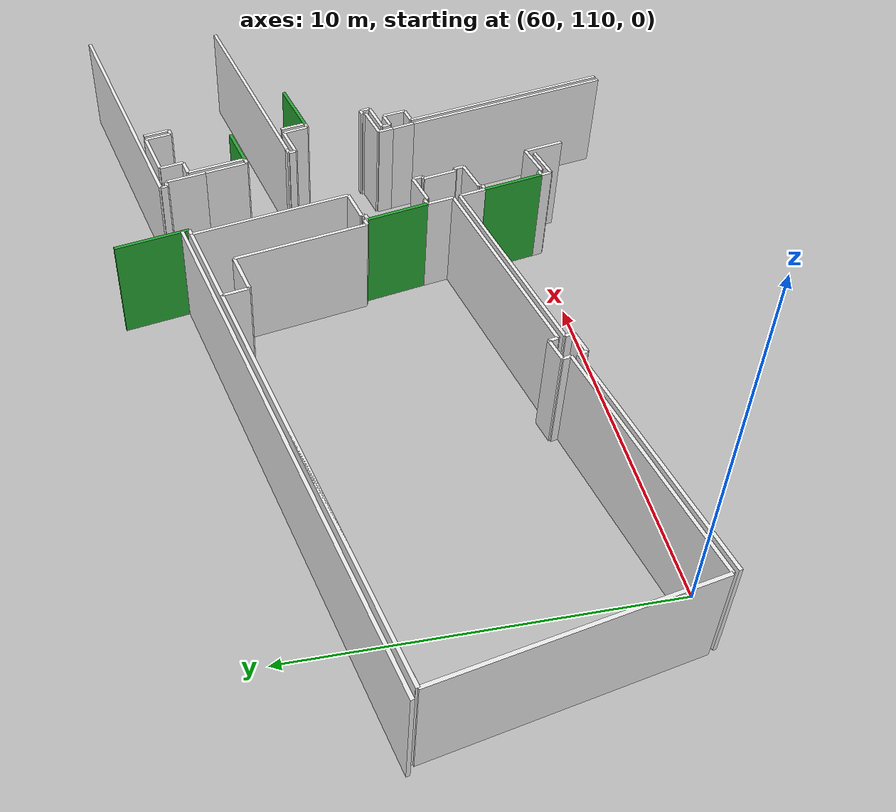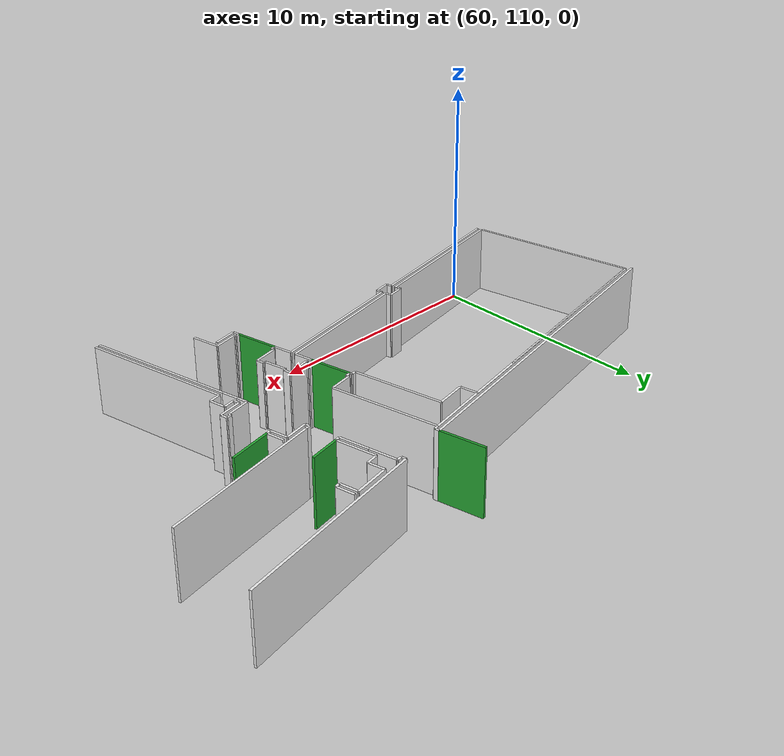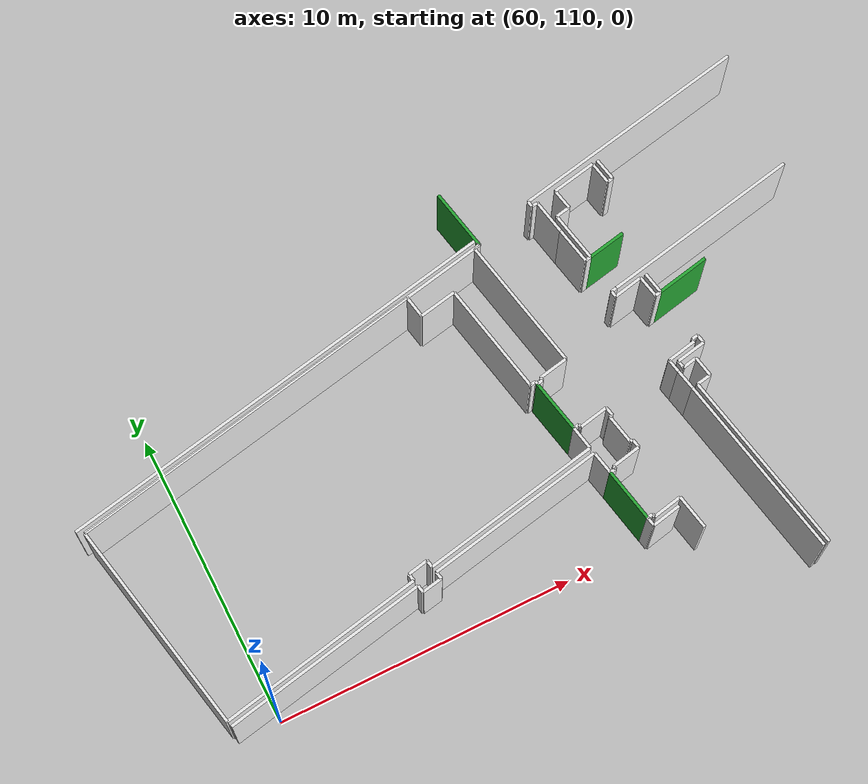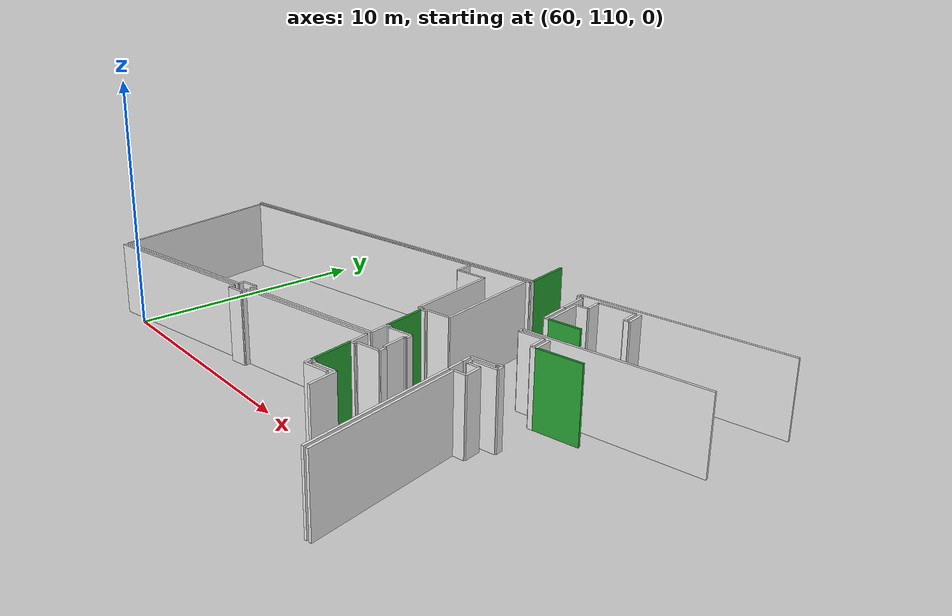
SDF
<sdf version="1.6">
 <world name="default">
  <model name="wall_71.7_114.6_1.5">
   <static>true</static>
   <pose>71.72999999998137 114.55000000004657 1.5 0 0 -1.3690339825092397</pose>
   <link name="link">
    <visual name="visual">
     <geometry><box><size>1.796440926065282 0.1 3</size></box></geometry>
     <material>
      <script><uri>file://media/materials/scripts/gazebo.material</uri><name>Gazebo/Green</name></script>
     </material>
    </visual>
    <collision name="collision"><geometry><box><size>1.796440926065282 0.1 3</size></box></geometry></collision>
   </link>
  </model>
  <model name="wall_72.4_111.0_1.5">
   <static>true</static>
   <pose>72.43499999999767 111.04000000003725 1.5 0 0 -1.3744936626731843</pose>
   <link name="link">
    <visual name="visual">
     <geometry><box><size>1.7944637079631676 0.1 3</size></box></geometry>
     <material>
      <script><uri>file://media/materials/scripts/gazebo.material</uri><name>Gazebo/Green</name></script>
     </material>
    </visual>
    <collision name="collision"><geometry><box><size>1.7944637079631676 0.1 3</size></box></geometry></collision>
   </link>
  </model>
  <model name="wall_77.2_116.6_1.5">
   <static>true</static>
   <pose>77.24499999999534 116.57000000006519 1.5 0 0 0.20065287724709358</pose>
   <link name="link">
    <visual name="visual">
     <geometry><box><size>1.80623918681111 0.1 3</size></box></geometry>
     <material>
      <script><uri>file://media/materials/scripts/gazebo.material</uri><name>Gazebo/Green</name></script>
     </material>
    </visual>
    <collision name="collision"><geometry><box><size>1.80623918681111 0.1 3</size></box></geometry></collision>
   </link>
  </model>
  <model name="wall_75.6_118.5_1.5">
   <static>true</static>
   <pose>75.57500000001164 118.51500000013039 1.5 0 0 0.1943652660922386</pose>
   <link name="link">
    <visual name="visual">
     <geometry><box><size>1.2943724348298333 0.1 3</size></box></geometry>
     <material>
      <script><uri>file://media/materials/scripts/gazebo.material</uri><name>Gazebo/Green</name></script>
     </material>
    </visual>
    <collision name="collision"><geometry><box><size>1.2943724348298333 0.1 3</size></box></geometry></collision>
   </link>
  </model>
  <model name="wall_71.8_121.3_1.5">
   <static>true</static>
   <pose>71.80499999993481 121.32999999984168 1.5 0 0 1.7672581801644416</pose>
   <link name="link">
    <visual name="visual">
     <geometry><box><size>2.1004047229885034 0.1 3</size></box></geometry>
     <material>
      <script><uri>file://media/materials/scripts/gazebo.material</uri><name>Gazebo/Green</name></script>
     </material>
    </visual>
    <collision name="collision"><geometry><box><size>2.1004047229885034 0.1 3</size></box></geometry></collision>
   </link>
  </model>
  <model name="wall_71.5_115.5_1.5">
   <static>true</static>
   <pose>71.5449999999837 115.47999999998137 1.5 0 0 1.6704649797471094</pose>
   <link name="link">
    <visual name="visual">
     <geometry><box><size>0.10049875584145537 0.1 3</size></box></geometry>
     <material>
      <script><uri>file://media/materials/scripts/gazebo.material</uri><name>Gazebo/White</name></script>
     </material>
    </visual>
    <collision name="collision"><geometry><box><size>0.10049875584145537 0.1 3</size></box></geometry></collision>
   </link>
  </model>
  <model name="wall_71.4_115.5_1.5">
   <static>true</static>
   <pose>71.44000000000233 115.51000000000931 1.5 0 0 -2.944197095754793</pose>
   <link name="link">
    <visual name="visual">
     <geometry><box><size>0.20396078041403173 0.1 3</size></box></geometry>
     <material>
      <script><uri>file://media/materials/scripts/gazebo.material</uri><name>Gazebo/White</name></script>
     </material>
    </visual>
    <collision name="collision"><geometry><box><size>0.20396078041403173 0.1 3</size></box></geometry></collision>
   </link>
  </model>
  <model name="wall_71.0_117.4_1.5">
   <static>true</static>
   <pose>70.96500000002561 117.37000000011176 1.5 0 0 1.7676803777493852</pose>
   <link name="link">
    <visual name="visual">
     <geometry><box><size>3.834070943308059 0.1 3</size></box></geometry>
     <material>
      <script><uri>file://media/materials/scripts/gazebo.material</uri><name>Gazebo/White</name></script>
     </material>
    </visual>
    <collision name="collision"><geometry><box><size>3.834070943308059 0.1 3</size></box></geometry></collision>
   </link>
  </model>
  <model name="wall_70.0_119.1_1.5">
   <static>true</static>
   <pose>69.96500000002561 119.12999999988824 1.5 0 0 -2.9519011013949563</pose>
   <link name="link">
    <visual name="visual">
     <geometry><box><size>1.2728314892817856 0.1 3</size></box></geometry>
     <material>
      <script><uri>file://media/materials/scripts/gazebo.material</uri><name>Gazebo/White</name></script>
     </material>
    </visual>
    <collision name="collision"><geometry><box><size>1.2728314892817856 0.1 3</size></box></geometry></collision>
   </link>
  </model>
  <model name="wall_69.3_119.4_1.5">
   <static>true</static>
   <pose>69.27000000001863 119.375 1.5 0 0 1.760276484581226</pose>
   <link name="link">
    <visual name="visual">
     <geometry><box><size>0.7433034378075905 0.1 3</size></box></geometry>
     <material>
      <script><uri>file://media/materials/scripts/gazebo.material</uri><name>Gazebo/White</name></script>
     </material>
    </visual>
    <collision name="collision"><geometry><box><size>0.7433034378075905 0.1 3</size></box></geometry></collision>
   </link>
  </model>
  <model name="wall_63.1_118.5_1.5">
   <static>true</static>
   <pose>63.14500000001863 118.54500000015832 1.5 0 0 -2.9467391918441352</pose>
   <link name="link">
    <visual name="visual">
     <geometry><box><size>12.343589429346915 0.1 3</size></box></geometry>
     <material>
      <script><uri>file://media/materials/scripts/gazebo.material</uri><name>Gazebo/White</name></script>
     </material>
    </visual>
    <collision name="collision"><geometry><box><size>12.343589429346915 0.1 3</size></box></geometry></collision>
   </link>
  </model>
  <model name="wall_57.8_113.8_1.5">
   <static>true</static>
   <pose>57.80000000001746 113.78500000014901 1.5 0 0 -1.3742100465085676</pose>
   <link name="link">
    <visual name="visual">
     <geometry><box><size>7.270027510151529 0.1 3</size></box></geometry>
     <material>
      <script><uri>file://media/materials/scripts/gazebo.material</uri><name>Gazebo/White</name></script>
     </material>
    </visual>
    <collision name="collision"><geometry><box><size>7.270027510151529 0.1 3</size></box></geometry></collision>
   </link>
  </model>
  <model name="wall_61.9_110.9_1.5">
   <static>true</static>
   <pose>61.945000000006985 110.9000000001397 1.5 0 0 0.1954353271142626</pose>
   <link name="link">
    <visual name="visual">
     <geometry><box><size>7.0033206409232305 0.1 3</size></box></geometry>
     <material>
      <script><uri>file://media/materials/scripts/gazebo.material</uri><name>Gazebo/White</name></script>
     </material>
    </visual>
    <collision name="collision"><geometry><box><size>7.0033206409232305 0.1 3</size></box></geometry></collision>
   </link>
  </model>
  <model name="wall_65.4_111.7_1.5">
   <static>true</static>
   <pose>65.35500000001048 111.69999999995343 1.5 0 0 1.7761917161396261</pose>
   <link name="link">
    <visual name="visual">
     <geometry><box><size>0.24515301320319682 0.1 3</size></box></geometry>
     <material>
      <script><uri>file://media/materials/scripts/gazebo.material</uri><name>Gazebo/White</name></script>
     </material>
    </visual>
    <collision name="collision"><geometry><box><size>0.24515301320319682 0.1 3</size></box></geometry></collision>
   </link>
  </model>
  <model name="wall_65.7_111.9_1.5">
   <static>true</static>
   <pose>65.6700000000128 111.88999999989755 1.5 0 0 0.20304521743943982</pose>
   <link name="link">
    <visual name="visual">
     <geometry><box><size>0.6942621983278424 0.1 3</size></box></geometry>
     <material>
      <script><uri>file://media/materials/scripts/gazebo.material</uri><name>Gazebo/White</name></script>
     </material>
    </visual>
    <collision name="collision"><geometry><box><size>0.6942621983278424 0.1 3</size></box></geometry></collision>
   </link>
  </model>
  <model name="wall_66.0_111.8_1.5">
   <static>true</static>
   <pose>66.03500000000349 111.83499999996275 1.5 0 0 -1.373400766989791</pose>
   <link name="link">
    <visual name="visual">
     <geometry><box><size>0.25495097567735614 0.1 3</size></box></geometry>
     <material>
      <script><uri>file://media/materials/scripts/gazebo.material</uri><name>Gazebo/White</name></script>
     </material>
    </visual>
    <collision name="collision"><geometry><box><size>0.25495097567735614 0.1 3</size></box></geometry></collision>
   </link>
  </model>
  <model name="wall_69.1_112.3_1.5">
   <static>true</static>
   <pose>69.05999999999767 112.30000000004657 1.5 0 0 0.19418838678074232</pose>
   <link name="link">
    <visual name="visual">
     <geometry><box><size>6.1149325425875 0.1 3</size></box></geometry>
     <material>
      <script><uri>file://media/materials/scripts/gazebo.material</uri><name>Gazebo/White</name></script>
     </material>
    </visual>
    <collision name="collision"><geometry><box><size>6.1149325425875 0.1 3</size></box></geometry></collision>
   </link>
  </model>
  <model name="wall_72.0_113.3_1.5">
   <static>true</static>
   <pose>71.98499999998603 113.28000000002794 1.5 0 0 1.760784614791112</pose>
   <link name="link">
    <visual name="visual">
     <geometry><box><size>0.7942921374956162 0.1 3</size></box></geometry>
     <material>
      <script><uri>file://media/materials/scripts/gazebo.material</uri><name>Gazebo/White</name></script>
     </material>
    </visual>
    <collision name="collision"><geometry><box><size>0.7942921374956162 0.1 3</size></box></geometry></collision>
   </link>
  </model>
  <model name="wall_72.2_112.3_1.5">
   <static>true</static>
   <pose>72.17999999999302 112.30499999993481 1.5 0 0 1.7756730438677673</pose>
   <link name="link">
    <visual name="visual">
     <geometry><box><size>0.786447709666139 0.1 3</size></box></geometry>
     <material>
      <script><uri>file://media/materials/scripts/gazebo.material</uri><name>Gazebo/White</name></script>
     </material>
    </visual>
    <collision name="collision"><geometry><box><size>0.786447709666139 0.1 3</size></box></geometry></collision>
   </link>
  </model>
  <model name="wall_69.1_112.1_1.5">
   <static>true</static>
   <pose>69.09999999997672 112.0999999998603 1.5 0 0 -2.947404266809051</pose>
   <link name="link">
    <visual name="visual">
     <geometry><box><size>6.1149325425875 0.1 3</size></box></geometry>
     <material>
      <script><uri>file://media/materials/scripts/gazebo.material</uri><name>Gazebo/White</name></script>
     </material>
    </visual>
    <collision name="collision"><geometry><box><size>6.1149325425875 0.1 3</size></box></geometry></collision>
   </link>
  </model>
  <model name="wall_66.1_111.4_1.5">
   <static>true</static>
   <pose>66.125 111.38999999989755 1.5 0 0 -1.3654009372177238</pose>
   <link name="link">
    <visual name="visual">
     <geometry><box><size>0.24515301321506852 0.1 3</size></box></geometry>
     <material>
      <script><uri>file://media/materials/scripts/gazebo.material</uri><name>Gazebo/White</name></script>
     </material>
    </visual>
    <collision name="collision"><geometry><box><size>0.24515301321506852 0.1 3</size></box></geometry></collision>
   </link>
  </model>
  <model name="wall_65.8_111.2_1.5">
   <static>true</static>
   <pose>65.80999999999767 111.2050000000745 1.5 0 0 -2.9526954728846198</pose>
   <link name="link">
    <visual name="visual">
     <geometry><box><size>0.6923149572561651 0.1 3</size></box></geometry>
     <material>
      <script><uri>file://media/materials/scripts/gazebo.material</uri><name>Gazebo/White</name></script>
     </material>
    </visual>
    <collision name="collision"><geometry><box><size>0.6923149572561651 0.1 3</size></box></geometry></collision>
   </link>
  </model>
  <model name="wall_65.4_111.3_1.5">
   <static>true</static>
   <pose>65.44499999997788 111.26000000000931 1.5 0 0 1.7761917161396261</pose>
   <link name="link">
    <visual name="visual">
     <geometry><box><size>0.24515301320319682 0.1 3</size></box></geometry>
     <material>
      <script><uri>file://media/materials/scripts/gazebo.material</uri><name>Gazebo/White</name></script>
     </material>
    </visual>
    <collision name="collision"><geometry><box><size>0.24515301320319682 0.1 3</size></box></geometry></collision>
   </link>
  </model>
  <model name="wall_62.0_110.7_1.5">
   <static>true</static>
   <pose>61.98499999998603 110.70499999984168 1.5 0 0 -2.9475584256050955</pose>
   <link name="link">
    <visual name="visual">
     <geometry><box><size>7.001385577168813 0.1 3</size></box></geometry>
     <material>
      <script><uri>file://media/materials/scripts/gazebo.material</uri><name>Gazebo/White</name></script>
     </material>
    </visual>
    <collision name="collision"><geometry><box><size>7.001385577168813 0.1 3</size></box></geometry></collision>
   </link>
  </model>
  <model name="wall_73.2_110.0_1.5">
   <static>true</static>
   <pose>73.16000000000349 109.95999999996275 1.5 0 0 -2.9402755450405995</pose>
   <link name="link">
    <visual name="visual">
     <geometry><box><size>1.0001999800800263 0.1 3</size></box></geometry>
     <material>
      <script><uri>file://media/materials/scripts/gazebo.material</uri><name>Gazebo/White</name></script>
     </material>
    </visual>
    <collision name="collision"><geometry><box><size>1.0001999800800263 0.1 3</size></box></geometry></collision>
   </link>
  </model>
  <model name="wall_72.6_110.0_1.5">
   <static>true</static>
   <pose>72.63999999998487 110.01000000000931 1.5 0 0 1.7681918864582145</pose>
   <link name="link">
    <visual name="visual">
     <geometry><box><size>0.30594117108908153 0.1 3</size></box></geometry>
     <material>
      <script><uri>file://media/materials/scripts/gazebo.material</uri><name>Gazebo/White</name></script>
     </material>
    </visual>
    <collision name="collision"><geometry><box><size>0.30594117108908153 0.1 3</size></box></geometry></collision>
   </link>
  </model>
  <model name="wall_76.8_114.5_1.5">
   <static>true</static>
   <pose>76.75 114.47500000009313 1.5 0 0 -1.3667783470430568</pose>
   <link name="link">
    <visual name="visual">
     <geometry><box><size>0.2961418579470187 0.1 3</size></box></geometry>
     <material>
      <script><uri>file://media/materials/scripts/gazebo.material</uri><name>Gazebo/White</name></script>
     </material>
    </visual>
    <collision name="collision"><geometry><box><size>0.2961418579470187 0.1 3</size></box></geometry></collision>
   </link>
  </model>
  <model name="wall_76.3_114.2_1.5">
   <static>true</static>
   <pose>76.28500000000349 114.23500000010245 1.5 0 0 -2.9519790378789845</pose>
   <link name="link">
    <visual name="visual">
     <geometry><box><size>1.0080674580977094 0.1 3</size></box></geometry>
     <material>
      <script><uri>file://media/materials/scripts/gazebo.material</uri><name>Gazebo/White</name></script>
     </material>
    </visual>
    <collision name="collision"><geometry><box><size>1.0080674580977094 0.1 3</size></box></geometry></collision>
   </link>
  </model>
  <model name="wall_75.8_114.0_1.5">
   <static>true</static>
   <pose>75.81500000000233 114.01500000013039 1.5 0 0 -1.3734007667659154</pose>
   <link name="link">
    <visual name="visual">
     <geometry><box><size>0.2549509756887716 0.1 3</size></box></geometry>
     <material>
      <script><uri>file://media/materials/scripts/gazebo.material</uri><name>Gazebo/White</name></script>
     </material>
    </visual>
    <collision name="collision"><geometry><box><size>0.2549509756887716 0.1 3</size></box></geometry></collision>
   </link>
  </model>
  <model name="wall_76.1_113.9_1.5">
   <static>true</static>
   <pose>76.08500000002095 113.94000000017695 1.5 0 0 0.2013171085608308</pose>
   <link name="link">
    <visual name="visual">
     <geometry><box><size>0.5000999900114971 0.1 3</size></box></geometry>
     <material>
      <script><uri>file://media/materials/scripts/gazebo.material</uri><name>Gazebo/White</name></script>
     </material>
    </visual>
    <collision name="collision"><geometry><box><size>0.5000999900114971 0.1 3</size></box></geometry></collision>
   </link>
  </model>
  <model name="wall_76.4_113.7_1.5">
   <static>true</static>
   <pose>76.39500000001863 113.6500000001397 1.5 0 0 -1.3818991459561358</pose>
   <link name="link">
    <visual name="visual">
     <geometry><box><size>0.6923149573923696 0.1 3</size></box></geometry>
     <material>
      <script><uri>file://media/materials/scripts/gazebo.material</uri><name>Gazebo/White</name></script>
     </material>
    </visual>
    <collision name="collision"><geometry><box><size>0.6923149573923696 0.1 3</size></box></geometry></collision>
   </link>
  </model>
  <model name="wall_76.2_113.3_1.5">
   <static>true</static>
   <pose>76.21499999999651 113.26500000013039 1.5 0 0 -2.9599438239016918</pose>
   <link name="link">
    <visual name="visual">
     <geometry><box><size>0.4981967483044168 0.1 3</size></box></geometry>
     <material>
      <script><uri>file://media/materials/scripts/gazebo.material</uri><name>Gazebo/White</name></script>
     </material>
    </visual>
    <collision name="collision"><geometry><box><size>0.4981967483044168 0.1 3</size></box></geometry></collision>
   </link>
  </model>
  <model name="wall_76.6_110.1_1.5">
   <static>true</static>
   <pose>76.58499999999185 110.13500000000931 1.5 0 0 -1.3740242082667369</pose>
   <link name="link">
    <visual name="visual">
     <geometry><box><size>6.291406838293342 0.1 3</size></box></geometry>
     <material>
      <script><uri>file://media/materials/scripts/gazebo.material</uri><name>Gazebo/White</name></script>
     </material>
    </visual>
    <collision name="collision"><geometry><box><size>6.291406838293342 0.1 3</size></box></geometry></collision>
   </link>
  </model>
  <model name="wall_76.3_116.8_1.5">
   <static>true</static>
   <pose>76.28999999997905 116.75500000012107 1.5 0 0 -1.3813161688905715</pose>
   <link name="link">
    <visual name="visual">
     <geometry><box><size>0.7433034373502634 0.1 3</size></box></geometry>
     <material>
      <script><uri>file://media/materials/scripts/gazebo.material</uri><name>Gazebo/White</name></script>
     </material>
    </visual>
    <collision name="collision"><geometry><box><size>0.7433034373502634 0.1 3</size></box></geometry></collision>
   </link>
  </model>
  <model name="wall_76.5_120.8_1.5">
   <static>true</static>
   <pose>76.51500000001397 120.75499999988824 1.5 0 0 -1.3734007669151658</pose>
   <link name="link">
    <visual name="visual">
     <geometry><box><size>0.764852927043484 0.1 3</size></box></geometry>
     <material>
      <script><uri>file://media/materials/scripts/gazebo.material</uri><name>Gazebo/White</name></script>
     </material>
    </visual>
    <collision name="collision"><geometry><box><size>0.764852927043484 0.1 3</size></box></geometry></collision>
   </link>
  </model>
  <model name="wall_76.7_120.4_1.5">
   <static>true</static>
   <pose>76.68500000002678 120.39999999990687 1.5 0 0 0.20749622662047904</pose>
   <link name="link">
    <visual name="visual">
     <geometry><box><size>0.19416487839942884 0.1 3</size></box></geometry>
     <material>
      <script><uri>file://media/materials/scripts/gazebo.material</uri><name>Gazebo/White</name></script>
     </material>
    </visual>
    <collision name="collision"><geometry><box><size>0.19416487839942884 0.1 3</size></box></geometry></collision>
   </link>
  </model>
  <model name="wall_76.7_120.8_1.5">
   <static>true</static>
   <pose>76.7050000000163 120.7949999999255 1.5 0 0 1.7681918866746276</pose>
   <link name="link">
    <visual name="visual">
     <geometry><box><size>0.764852927043484 0.1 3</size></box></geometry>
     <material>
      <script><uri>file://media/materials/scripts/gazebo.material</uri><name>Gazebo/White</name></script>
     </material>
    </visual>
    <collision name="collision"><geometry><box><size>0.764852927043484 0.1 3</size></box></geometry></collision>
   </link>
  </model>
  <model name="wall_78.5_117.8_1.5">
   <static>true</static>
   <pose>78.52999999999884 117.78000000002794 1.5 0 0 -2.9465012371516703</pose>
   <link name="link">
    <visual name="visual">
     <geometry><box><size>6.809170287154237 0.1 3</size></box></geometry>
     <material>
      <script><uri>file://media/materials/scripts/gazebo.material</uri><name>Gazebo/White</name></script>
     </material>
    </visual>
    <collision name="collision"><geometry><box><size>6.809170287154237 0.1 3</size></box></geometry></collision>
   </link>
  </model>
  <model name="wall_74.8_119.2_1.5">
   <static>true</static>
   <pose>74.77499999999418 119.22500000009313 1.5 0 0 1.7658877432748503</pose>
   <link name="link">
    <visual name="visual">
     <geometry><box><size>1.7022925717284638 0.1 3</size></box></geometry>
     <material>
      <script><uri>file://media/materials/scripts/gazebo.material</uri><name>Gazebo/White</name></script>
     </material>
    </visual>
    <collision name="collision"><geometry><box><size>1.7022925717284638 0.1 3</size></box></geometry></collision>
   </link>
  </model>
  <model name="wall_74.9_120.1_1.5">
   <static>true</static>
   <pose>74.85499999998137 120.11000000010245 1.5 0 0 0.2013171085608308</pose>
   <link name="link">
    <visual name="visual">
     <geometry><box><size>0.5000999900114971 0.1 3</size></box></geometry>
     <material>
      <script><uri>file://media/materials/scripts/gazebo.material</uri><name>Gazebo/White</name></script>
     </material>
    </visual>
    <collision name="collision"><geometry><box><size>0.5000999900114971 0.1 3</size></box></geometry></collision>
   </link>
  </model>
  <model name="wall_75.0_120.5_1.5">
   <static>true</static>
   <pose>75.02999999999884 120.5 1.5 0 0 1.7738415440725144</pose>
   <link name="link">
    <visual name="visual">
     <geometry><box><size>0.6942621980075696 0.1 3</size></box></geometry>
     <material>
      <script><uri>file://media/materials/scripts/gazebo.material</uri><name>Gazebo/White</name></script>
     </material>
    </visual>
    <collision name="collision"><geometry><box><size>0.6942621980075696 0.1 3</size></box></geometry></collision>
   </link>
  </model>
  <model name="wall_75.7_121.0_1.5">
   <static>true</static>
   <pose>75.70000000001164 120.98499999986961 1.5 0 0 0.19349440931601616</pose>
   <link name="link">
    <visual name="visual">
     <geometry><box><size>1.508144555394632 0.1 3</size></box></geometry>
     <material>
      <script><uri>file://media/materials/scripts/gazebo.material</uri><name>Gazebo/White</name></script>
     </material>
    </visual>
    <collision name="collision"><geometry><box><size>1.508144555394632 0.1 3</size></box></geometry></collision>
   </link>
  </model>
  <model name="wall_73.9_109.7_1.5">
   <static>true</static>
   <pose>73.91500000000815 109.70999999996275 1.5 0 0 1.7665335133806872</pose>
   <link name="link">
    <visual name="visual">
     <geometry><box><size>1.1825819212062707 0.1 3</size></box></geometry>
     <material>
      <script><uri>file://media/materials/scripts/gazebo.material</uri><name>Gazebo/White</name></script>
     </material>
    </visual>
    <collision name="collision"><geometry><box><size>1.1825819212062707 0.1 3</size></box></geometry></collision>
   </link>
  </model>
  <model name="wall_73.3_110.2_1.5">
   <static>true</static>
   <pose>73.30999999999767 110.18999999994412 1.5 0 0 -2.9402755450289626</pose>
   <link name="link">
    <visual name="visual">
     <geometry><box><size>1.0001999800229942 0.1 3</size></box></geometry>
     <material>
      <script><uri>file://media/materials/scripts/gazebo.material</uri><name>Gazebo/White</name></script>
     </material>
    </visual>
    <collision name="collision"><geometry><box><size>1.0001999800229942 0.1 3</size></box></geometry></collision>
   </link>
  </model>
  <model name="wall_72.8_110.1_1.5">
   <static>true</static>
   <pose>72.80999999999767 110.13999999989755 1.5 0 0 1.7681918866447774</pose>
   <link name="link">
    <visual name="visual">
     <geometry><box><size>0.10198039036683233 0.1 3</size></box></geometry>
     <material>
      <script><uri>file://media/materials/scripts/gazebo.material</uri><name>Gazebo/White</name></script>
     </material>
    </visual>
    <collision name="collision"><geometry><box><size>0.10198039036683233 0.1 3</size></box></geometry></collision>
   </link>
  </model>
  <model name="wall_72.7_110.2_1.5">
   <static>true</static>
   <pose>72.7049999999872 110.17500000004657 1.5 0 0 -2.9849907776618085</pose>
   <link name="link">
    <visual name="visual">
     <geometry><box><size>0.19235384058705793 0.1 3</size></box></geometry>
     <material>
      <script><uri>file://media/materials/scripts/gazebo.material</uri><name>Gazebo/White</name></script>
     </material>
    </visual>
    <collision name="collision"><geometry><box><size>0.19235384058705793 0.1 3</size></box></geometry></collision>
   </link>
  </model>
  <model name="wall_72.4_111.9_1.5">
   <static>true</static>
   <pose>72.35500000001048 111.93500000005588 1.5 0 0 0.15660187831921837</pose>
   <link name="link">
    <visual name="visual">
     <geometry><box><size>0.19235384065968367 0.1 3</size></box></geometry>
     <material>
      <script><uri>file://media/materials/scripts/gazebo.material</uri><name>Gazebo/White</name></script>
     </material>
    </visual>
    <collision name="collision"><geometry><box><size>0.19235384065968367 0.1 3</size></box></geometry></collision>
   </link>
  </model>
  <model name="wall_72.4_112.0_1.5">
   <static>true</static>
   <pose>72.44000000000233 112.0 1.5 0 0 1.7681918875402798</pose>
   <link name="link">
    <visual name="visual">
     <geometry><box><size>0.10198038991021388 0.1 3</size></box></geometry>
     <material>
      <script><uri>file://media/materials/scripts/gazebo.material</uri><name>Gazebo/White</name></script>
     </material>
    </visual>
    <collision name="collision"><geometry><box><size>0.10198038991021388 0.1 3</size></box></geometry></collision>
   </link>
  </model>
  <model name="wall_72.9_112.1_1.5">
   <static>true</static>
   <pose>72.9199999999837 112.14999999990687 1.5 0 0 0.2013171085608308</pose>
   <link name="link">
    <visual name="visual">
     <geometry><box><size>1.0001999800229942 0.1 3</size></box></geometry>
     <material>
      <script><uri>file://media/materials/scripts/gazebo.material</uri><name>Gazebo/White</name></script>
     </material>
    </visual>
    <collision name="collision"><geometry><box><size>1.0001999800229942 0.1 3</size></box></geometry></collision>
   </link>
  </model>
  <model name="wall_73.4_112.4_1.5">
   <static>true</static>
   <pose>73.37999999997555 112.39500000001863 1.5 0 0 1.7748143063542596</pose>
   <link name="link">
    <visual name="visual">
     <geometry><box><size>0.2961418579352255 0.1 3</size></box></geometry>
     <material>
      <script><uri>file://media/materials/scripts/gazebo.material</uri><name>Gazebo/White</name></script>
     </material>
    </visual>
    <collision name="collision"><geometry><box><size>0.2961418579352255 0.1 3</size></box></geometry></collision>
   </link>
  </model>
  <model name="wall_73.3_112.5_1.5">
   <static>true</static>
   <pose>73.30499999999302 112.53000000002794 1.5 0 0 -2.922923707441933</pose>
   <link name="link">
    <visual name="visual">
     <geometry><box><size>0.09219544454514944 0.1 3</size></box></geometry>
     <material>
      <script><uri>file://media/materials/scripts/gazebo.material</uri><name>Gazebo/White</name></script>
     </material>
    </visual>
    <collision name="collision"><geometry><box><size>0.09219544454514944 0.1 3</size></box></geometry></collision>
   </link>
  </model>
  <model name="wall_73.2_113.0_1.5">
   <static>true</static>
   <pose>73.16000000000349 113.01000000000931 1.5 0 0 1.7721134351846652</pose>
   <link name="link">
    <visual name="visual">
     <geometry><box><size>1.0001999799880765 0.1 3</size></box></geometry>
     <material>
      <script><uri>file://media/materials/scripts/gazebo.material</uri><name>Gazebo/White</name></script>
     </material>
    </visual>
    <collision name="collision"><geometry><box><size>1.0001999799880765 0.1 3</size></box></geometry></collision>
   </link>
  </model>
  <model name="wall_73.1_113.5_1.5">
   <static>true</static>
   <pose>73.10999999998603 113.51000000000931 1.5 0 0 0.1973955600737564</pose>
   <link name="link">
    <visual name="visual">
     <geometry><box><size>0.10198039025267772 0.1 3</size></box></geometry>
     <material>
      <script><uri>file://media/materials/scripts/gazebo.material</uri><name>Gazebo/White</name></script>
     </material>
    </visual>
    <collision name="collision"><geometry><box><size>0.10198039025267772 0.1 3</size></box></geometry></collision>
   </link>
  </model>
  <model name="wall_73.1_113.7_1.5">
   <static>true</static>
   <pose>73.12999999997555 113.66500000003725 1.5 0 0 1.7748143063542596</pose>
   <link name="link">
    <visual name="visual">
     <geometry><box><size>0.2961418579352255 0.1 3</size></box></geometry>
     <material>
      <script><uri>file://media/materials/scripts/gazebo.material</uri><name>Gazebo/White</name></script>
     </material>
    </visual>
    <collision name="collision"><geometry><box><size>0.2961418579352255 0.1 3</size></box></geometry></collision>
   </link>
  </model>
  <model name="wall_72.6_113.7_1.5">
   <static>true</static>
   <pose>72.60999999998603 113.70999999996275 1.5 0 0 -2.9402755450289626</pose>
   <link name="link">
    <visual name="visual">
     <geometry><box><size>1.0001999800229942 0.1 3</size></box></geometry>
     <material>
      <script><uri>file://media/materials/scripts/gazebo.material</uri><name>Gazebo/White</name></script>
     </material>
    </visual>
    <collision name="collision"><geometry><box><size>1.0001999800229942 0.1 3</size></box></geometry></collision>
   </link>
  </model>
  <model name="wall_72.1_113.7_1.5">
   <static>true</static>
   <pose>72.10999999998603 113.65999999991618 1.5 0 0 1.7681918866447774</pose>
   <link name="link">
    <visual name="visual">
     <geometry><box><size>0.10198039036683233 0.1 3</size></box></geometry>
     <material>
      <script><uri>file://media/materials/scripts/gazebo.material</uri><name>Gazebo/White</name></script>
     </material>
    </visual>
    <collision name="collision"><geometry><box><size>0.10198039036683233 0.1 3</size></box></geometry></collision>
   </link>
  </model>
  <model name="wall_72.0_113.7_1.5">
   <static>true</static>
   <pose>72.00499999997555 113.68999999994412 1.5 0 0 -2.9340964269693144</pose>
   <link name="link">
    <visual name="visual">
     <geometry><box><size>0.19416487839942884 0.1 3</size></box></geometry>
     <material>
      <script><uri>file://media/materials/scripts/gazebo.material</uri><name>Gazebo/White</name></script>
     </material>
    </visual>
    <collision name="collision"><geometry><box><size>0.19416487839942884 0.1 3</size></box></geometry></collision>
   </link>
  </model>
  <model name="wall_71.6_115.5_1.5">
   <static>true</static>
   <pose>71.64999999999418 115.45000000018626 1.5 0 0 0.19739556001778746</pose>
   <link name="link">
    <visual name="visual">
     <geometry><box><size>0.20396078056243275 0.1 3</size></box></geometry>
     <material>
      <script><uri>file://media/materials/scripts/gazebo.material</uri><name>Gazebo/White</name></script>
     </material>
    </visual>
    <collision name="collision"><geometry><box><size>0.20396078056243275 0.1 3</size></box></geometry></collision>
   </link>
  </model>
  <model name="wall_71.7_115.5_1.5">
   <static>true</static>
   <pose>71.73999999999069 115.52000000001863 1.5 0 0 1.7681918875402798</pose>
   <link name="link">
    <visual name="visual">
     <geometry><box><size>0.10198038991021388 0.1 3</size></box></geometry>
     <material>
      <script><uri>file://media/materials/scripts/gazebo.material</uri><name>Gazebo/White</name></script>
     </material>
    </visual>
    <collision name="collision"><geometry><box><size>0.10198038991021388 0.1 3</size></box></geometry></collision>
   </link>
  </model>
  <model name="wall_72.2_115.7_1.5">
   <static>true</static>
   <pose>72.22000000000116 115.66499999980442 1.5 0 0 0.19150171840711785</pose>
   <link name="link">
    <visual name="visual">
     <geometry><box><size>0.9982484660926583 0.1 3</size></box></geometry>
     <material>
      <script><uri>file://media/materials/scripts/gazebo.material</uri><name>Gazebo/White</name></script>
     </material>
    </visual>
    <collision name="collision"><geometry><box><size>0.9982484660926583 0.1 3</size></box></geometry></collision>
   </link>
  </model>
  <model name="wall_72.3_118.0_1.5">
   <static>true</static>
   <pose>72.26500000001397 117.98999999999069 1.5 0 0 1.7677606663024836</pose>
   <link name="link">
    <visual name="visual">
     <geometry><box><size>4.547933597123673 0.1 3</size></box></geometry>
     <material>
      <script><uri>file://media/materials/scripts/gazebo.material</uri><name>Gazebo/White</name></script>
     </material>
    </visual>
    <collision name="collision"><geometry><box><size>4.547933597123673 0.1 3</size></box></geometry></collision>
   </link>
  </model>
  <model name="wall_71.8_120.2_1.5">
   <static>true</static>
   <pose>71.81500000000233 120.23999999999069 1.5 0 0 1.8157749926609448</pose>
   <link name="link">
    <visual name="visual">
     <geometry><box><size>0.041231055842818214 0.1 3</size></box></geometry>
     <material>
      <script><uri>file://media/materials/scripts/gazebo.material</uri><name>Gazebo/White</name></script>
     </material>
    </visual>
    <collision name="collision">
     <geometry><box><size>0.041231055842818214 0.1 3</size></box></geometry>
    </collision>
   </link>
  </model>
  <model name="wall_71.9_120.3_1.5">
   <static>true</static>
   <pose>71.91000000000349 120.27999999979511 1.5 0 0 0.19739556001778746</pose>
   <link name="link">
    <visual name="visual">
     <geometry><box><size>0.20396078056243275 0.1 3</size></box></geometry>
     <material>
      <script><uri>file://media/materials/scripts/gazebo.material</uri><name>Gazebo/White</name></script>
     </material>
    </visual>
    <collision name="collision"><geometry><box><size>0.20396078056243275 0.1 3</size></box></geometry></collision>
   </link>
  </model>
  <model name="wall_74.2_120.7_1.5">
   <static>true</static>
   <pose>74.1700000000128 120.72500000009313 1.5 0 0 0.14888994887611873</pose>
   <link name="link">
    <visual name="visual">
     <geometry><box><size>0.20223748421176238 0.1 3</size></box></geometry>
     <material>
      <script><uri>file://media/materials/scripts/gazebo.material</uri><name>Gazebo/White</name></script>
     </material>
    </visual>
    <collision name="collision"><geometry><box><size>0.20223748421176238 0.1 3</size></box></geometry></collision>
   </link>
  </model>
  <model name="wall_74.3_120.7_1.5">
   <static>true</static>
   <pose>74.27500000002328 120.72000000020489 1.5 0 0 -1.3258176636680326</pose>
   <link name="link">
    <visual name="visual">
     <geometry><box><size>0.04123105629457602 0.1 3</size></box></geometry>
     <material>
      <script><uri>file://media/materials/scripts/gazebo.material</uri><name>Gazebo/White</name></script>
     </material>
    </visual>
    <collision name="collision"><geometry><box><size>0.04123105629457602 0.1 3</size></box></geometry></collision>
   </link>
  </model>
  <model name="wall_74.4_120.1_1.5">
   <static>true</static>
   <pose>74.39000000001397 120.14000000013039 1.5 0 0 -1.3768371795778953</pose>
   <link name="link">
    <visual name="visual">
     <geometry><box><size>1.1414026459746998 0.1 3</size></box></geometry>
     <material>
      <script><uri>file://media/materials/scripts/gazebo.material</uri><name>Gazebo/White</name></script>
     </material>
    </visual>
    <collision name="collision"><geometry><box><size>1.1414026459746998 0.1 3</size></box></geometry></collision>
   </link>
  </model>
  <model name="wall_74.6_119.0_1.5">
   <static>true</static>
   <pose>74.625 118.96500000008382 1.5 0 0 -1.3702757771145264</pose>
   <link name="link">
    <visual name="visual">
     <geometry><box><size>1.2551493934803852 0.1 3</size></box></geometry>
     <material>
      <script><uri>file://media/materials/scripts/gazebo.material</uri><name>Gazebo/White</name></script>
     </material>
    </visual>
    <collision name="collision"><geometry><box><size>1.2551493934803852 0.1 3</size></box></geometry></collision>
   </link>
  </model>
  <model name="wall_74.8_118.4_1.5">
   <static>true</static>
   <pose>74.84500000000116 118.37000000011176 1.5 0 0 0.20749622662047904</pose>
   <link name="link">
    <visual name="visual">
     <geometry><box><size>0.19416487839942884 0.1 3</size></box></geometry>
     <material>
      <script><uri>file://media/materials/scripts/gazebo.material</uri><name>Gazebo/White</name></script>
     </material>
    </visual>
    <collision name="collision"><geometry><box><size>0.19416487839942884 0.1 3</size></box></geometry></collision>
   </link>
  </model>
  <model name="wall_75.1_117.1_1.5">
   <static>true</static>
   <pose>75.09500000000116 117.10000000009313 1.5 0 0 -2.9340964269693144</pose>
   <link name="link">
    <visual name="visual">
     <geometry><box><size>0.19416487839942884 0.1 3</size></box></geometry>
     <material>
      <script><uri>file://media/materials/scripts/gazebo.material</uri><name>Gazebo/White</name></script>
     </material>
    </visual>
    <collision name="collision"><geometry><box><size>0.19416487839942884 0.1 3</size></box></geometry></collision>
   </link>
  </model>
  <model name="wall_75.0_117.0_1.5">
   <static>true</static>
   <pose>75.01999999998952 116.97999999998137 1.5 0 0 -1.3734007672248605</pose>
   <link name="link">
    <visual name="visual">
     <geometry><box><size>0.2039607807222492 0.1 3</size></box></geometry>
     <material>
      <script><uri>file://media/materials/scripts/gazebo.material</uri><name>Gazebo/White</name></script>
     </material>
    </visual>
    <collision name="collision"><geometry><box><size>0.2039607807222492 0.1 3</size></box></geometry></collision>
   </link>
  </model>
  <model name="wall_75.5_117.0_1.5">
   <static>true</static>
   <pose>75.52999999999884 116.97999999998137 1.5 0 0 0.20131710854919393</pose>
   <link name="link">
    <visual name="visual">
     <geometry><box><size>1.0001999800800263 0.1 3</size></box></geometry>
     <material>
      <script><uri>file://media/materials/scripts/gazebo.material</uri><name>Gazebo/White</name></script>
     </material>
    </visual>
    <collision name="collision"><geometry><box><size>1.0001999800800263 0.1 3</size></box></geometry></collision>
   </link>
  </model>
  <model name="wall_76.1_116.7_1.5">
   <static>true</static>
   <pose>76.09500000000116 116.71500000008382 1.5 0 0 -1.3681376576882938</pose>
   <link name="link">
    <visual name="visual">
     <geometry><box><size>0.7452516353301937 0.1 3</size></box></geometry>
     <material>
      <script><uri>file://media/materials/scripts/gazebo.material</uri><name>Gazebo/White</name></script>
     </material>
    </visual>
    <collision name="collision"><geometry><box><size>0.7452516353301937 0.1 3</size></box></geometry></collision>
   </link>
  </model>
  <model name="wall_76.3_116.4_1.5">
   <static>true</static>
   <pose>76.26499999998487 116.37000000011176 1.5 0 0 0.20749622662047904</pose>
   <link name="link">
    <visual name="visual">
     <geometry><box><size>0.19416487839942884 0.1 3</size></box></geometry>
     <material>
      <script><uri>file://media/materials/scripts/gazebo.material</uri><name>Gazebo/White</name></script>
     </material>
    </visual>
    <collision name="collision"><geometry><box><size>0.19416487839942884 0.1 3</size></box></geometry></collision>
   </link>
  </model>
  <model name="wall_76.6_114.6_1.5">
   <static>true</static>
   <pose>76.61999999999534 114.60499999998137 1.5 0 0 -2.9927027046709793</pose>
   <link name="link">
    <visual name="visual">
     <geometry><box><size>0.20223748415419868 0.1 3</size></box></geometry>
     <material>
      <script><uri>file://media/materials/scripts/gazebo.material</uri><name>Gazebo/White</name></script>
     </material>
    </visual>
    <collision name="collision"><geometry><box><size>0.20223748415419868 0.1 3</size></box></geometry></collision>
   </link>
  </model>
  <model name="wall_76.5_114.5_1.5">
   <static>true</static>
   <pose>76.52999999999884 114.54000000003725 1.5 0 0 -1.3734007666092025</pose>
   <link name="link">
    <visual name="visual">
     <geometry><box><size>0.10198038989879842 0.1 3</size></box></geometry>
     <material>
      <script><uri>file://media/materials/scripts/gazebo.material</uri><name>Gazebo/White</name></script>
     </material>
    </visual>
    <collision name="collision"><geometry><box><size>0.10198038989879842 0.1 3</size></box></geometry></collision>
   </link>
  </model>
  <model name="wall_76.0_114.4_1.5">
   <static>true</static>
   <pose>76.0449999999837 114.39000000013039 1.5 0 0 -2.942255348424875</pose>
   <link name="link">
    <visual name="visual">
     <geometry><box><size>1.0100000000277551 0.1 3</size></box></geometry>
     <material>
      <script><uri>file://media/materials/scripts/gazebo.material</uri><name>Gazebo/White</name></script>
     </material>
    </visual>
    <collision name="collision"><geometry><box><size>1.0100000000277551 0.1 3</size></box></geometry></collision>
   </link>
  </model>
  <model name="wall_75.6_114.1_1.5">
   <static>true</static>
   <pose>75.59500000000116 114.07000000006519 1.5 0 0 -1.3690339823938056</pose>
   <link name="link">
    <visual name="visual">
     <geometry><box><size>0.44911023140809897 0.1 3</size></box></geometry>
     <material>
      <script><uri>file://media/materials/scripts/gazebo.material</uri><name>Gazebo/White</name></script>
     </material>
    </visual>
    <collision name="collision"><geometry><box><size>0.44911023140809897 0.1 3</size></box></geometry></collision>
   </link>
  </model>
  <model name="wall_75.7_113.5_1.5">
   <static>true</static>
   <pose>75.71000000002095 113.51500000013039 1.5 0 0 -1.3648049900768227</pose>
   <link name="link">
    <visual name="visual">
     <geometry><box><size>0.6844705982758308 0.1 3</size></box></geometry>
     <material>
      <script><uri>file://media/materials/scripts/gazebo.material</uri><name>Gazebo/White</name></script>
     </material>
    </visual>
    <collision name="collision"><geometry><box><size>0.6844705982758308 0.1 3</size></box></geometry></collision>
   </link>
  </model>
  <model name="wall_76.4_110.1_1.5">
   <static>true</static>
   <pose>76.39500000001863 110.10000000009313 1.5 0 0 -1.3737129742480756</pose>
   <link name="link">
    <visual name="visual">
     <geometry><box><size>6.281600114762957 0.1 3</size></box></geometry>
     <material>
      <script><uri>file://media/materials/scripts/gazebo.material</uri><name>Gazebo/White</name></script>
     </material>
    </visual>
    <collision name="collision"><geometry><box><size>6.281600114762957 0.1 3</size></box></geometry></collision>
   </link>
  </model>
  <model name="wall_78.0_121.7_1.5">
   <static>true</static>
   <pose>78.03500000000349 121.68999999994412 1.5 0 0 -2.9468394128265745</pose>
   <link name="link">
    <visual name="visual">
     <geometry><box><size>8.164343206863132 0.1 3</size></box></geometry>
     <material>
      <script><uri>file://media/materials/scripts/gazebo.material</uri><name>Gazebo/White</name></script>
     </material>
    </visual>
    <collision name="collision"><geometry><box><size>8.164343206863132 0.1 3</size></box></geometry></collision>
   </link>
  </model>
  <model name="wall_74.1_120.8_1.5">
   <static>true</static>
   <pose>74.05000000001746 120.80499999993481 1.5 0 0 -1.363300100406013</pose>
   <link name="link">
    <visual name="visual">
     <geometry><box><size>0.19416487833047835 0.1 3</size></box></geometry>
     <material>
      <script><uri>file://media/materials/scripts/gazebo.material</uri><name>Gazebo/White</name></script>
     </material>
    </visual>
    <collision name="collision"><geometry><box><size>0.19416487833047835 0.1 3</size></box></geometry></collision>
   </link>
  </model>
  <model name="wall_72.0_120.4_1.5">
   <static>true</static>
   <pose>71.99499999999534 120.39500000001863 1.5 0 0 1.7273982035881303</pose>
   <link name="link">
    <visual name="visual">
     <geometry><box><size>0.1923538410258384 0.1 3</size></box></geometry>
     <material>
      <script><uri>file://media/materials/scripts/gazebo.material</uri><name>Gazebo/White</name></script>
     </material>
    </visual>
    <collision name="collision"><geometry><box><size>0.1923538410258384 0.1 3</size></box></geometry></collision>
   </link>
  </model>
  <model name="wall_64.4_119.0_1.5">
   <static>true</static>
   <pose>64.41499999997905 119.0 1.5 0 0 -2.947122177573041</pose>
   <link name="link">
    <visual name="visual">
     <geometry><box><size>15.42067767650972 0.1 3</size></box></geometry>
     <material>
      <script><uri>file://media/materials/scripts/gazebo.material</uri><name>Gazebo/White</name></script>
     </material>
    </visual>
    <collision name="collision"><geometry><box><size>15.42067767650972 0.1 3</size></box></geometry></collision>
   </link>
  </model>
  <model name="wall_64.6_118.8_1.5">
   <static>true</static>
   <pose>64.55000000001746 118.82499999995343 1.5 0 0 0.19520342923642736</pose>
   <link name="link">
    <visual name="visual">
     <geometry><box><size>15.208842822445934 0.1 3</size></box></geometry>
     <material>
      <script><uri>file://media/materials/scripts/gazebo.material</uri><name>Gazebo/White</name></script>
     </material>
    </visual>
    <collision name="collision"><geometry><box><size>15.208842822445934 0.1 3</size></box></geometry></collision>
   </link>
  </model>
 </world>
</sdf>
